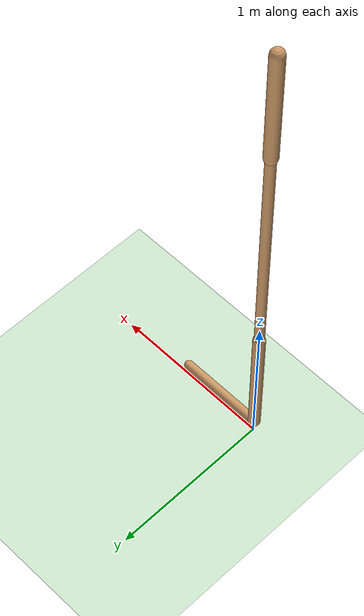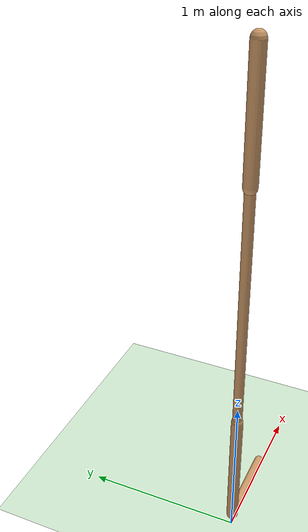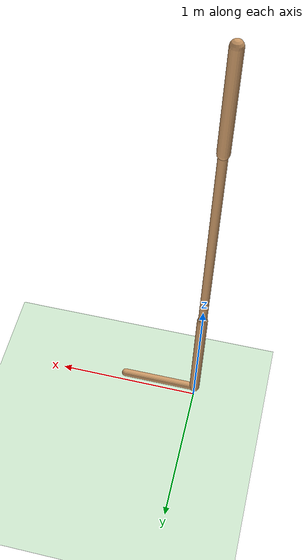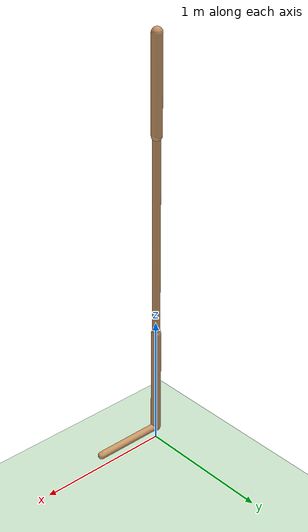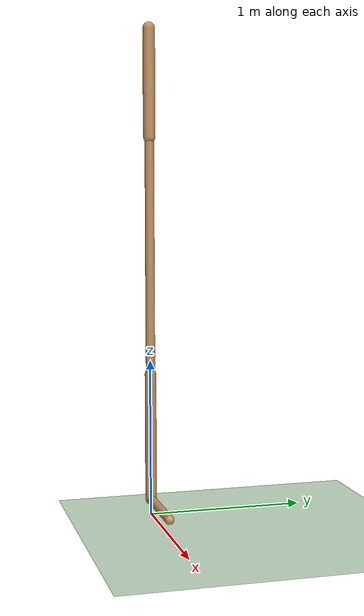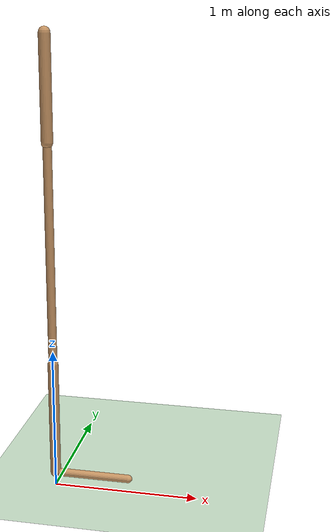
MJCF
<mujoco model="walker2d">
  <compiler angle="degree" inertiafromgeom="true" />
  <default>
    <joint armature="0.01" damping=".1" limited="true" />
    <geom conaffinity="0" condim="3" contype="1" density="1000" friction=".7 .1 .1" rgba="0.8 0.6 .4 1" />
  </default>
  <option integrator="RK4" timestep="0.002" />
  <worldbody>
    <light cutoff="100" diffuse="1 1 1" dir="-0 0 -1.3" directional="true" exponent="1" pos="0 0 1.3" specular=".1 .1 .1" />
    <geom conaffinity="1" condim="3" name="floor" pos="0 0 0" rgba="0.8 0.9 0.8 1" size="40 40 40" type="plane" material="MatPlane" />
    <body name="torso" pos="0 0 2.763030952215195">
      <camera name="track" mode="trackcom" pos="0 -5 -1.25" xyaxes="1 0 0 0 0 1" />
      <joint armature="0" axis="1 0 0" damping="0" limited="false" name="rootx" pos="0 0 -1.25" stiffness="0" type="slide" />
      <joint armature="0" axis="0 0 1" damping="0" limited="false" name="rootz" pos="0 0 -1.25" ref="1.25" stiffness="0" type="slide" />
      <joint armature="0" axis="0 1 0" damping="0" limited="false" name="rooty" pos="0 0 0" stiffness="0" type="hinge" />
      <geom friction="0.9" name="torso_geom" size="0.038610391318798065 0.34070131182670593" type="capsule" />
      <body name="thigh" pos="0 0 -0.34070131182670593">
        <joint axis="0 -1 0" name="thigh_joint" pos="0 0 0" range="-150 0" type="hinge" />
        <site name="torso_thigh_site" pos="0 0 0" size="0.01" type="sphere" rgba="1 0 0 0.5" />
        <geom friction="0.9" pos="0 0 -0.7533007264137268" name="thigh_geom" size="0.029339373111724854 0.7533007264137268" type="capsule" />
        <body name="leg" pos="0 0 -1.9144655466079712">
          <joint axis="0 -1 0" name="leg_joint" pos="0 0 0.4078640937805176" range="-150 0" type="hinge" />
          <site name="thigh_leg_site" pos="0 0 0.25" size="0.01" type="sphere" rgba="1 0 0 0.5" />
          <geom friction="0.9" name="leg_geom" size="0.0362473763525486 0.4078640937805176" type="capsule" />
          <body name="foot" pos="0.5205788612365723 0 -0.5078640937805176">
            <joint axis="0 -1 0" name="foot_joint" pos="-0.5205788612365723 0 0.1" range="-45 45" type="hinge" />
            <site name="leg_foot_site" pos="-0.2 0 0.1" size="0.01" type="sphere" rgba="1 0 0 0.5" />
            <geom friction="0.9" pos="-0.26028943061828613 0 0.1" quat="0.70710678118654757 0 -0.70710678118654746 0" name="foot_geom" size="0.028016943484544754 0.26028943061828613" type="capsule" />
          </body>
        </body>
      </body>

      <body name="thigh_left" pos="0 0 -0.34070131182670593">
        <joint axis="0 -1 0" name="thigh_left_joint" pos="0 0 0" range="-150 0" type="hinge" />
        <site name="torso_thigh_left_site" pos="0 0 0" size="0.01" type="sphere" rgba="1 0 0 0.5" />
        <geom friction="0.9" name="thigh_left_geom" rgba=".7 .3 .6 1" size="0.029339373111724854 0.7533007264137268" pos="0 0 -0.7533007264137268" type="capsule" />
        <body name="leg_left" pos="0 0 -1.9144655466079712">
          <joint axis="0 -1 0" name="leg_left_joint" pos="0 0 0.4078640937805176" range="-150 0" type="hinge" />
          <site name="thigh_leg_left_site" pos="0 0 0.25" size="0.01" type="sphere" rgba="1 0 0 0.5" />
          <geom friction="0.9" name="leg_left_geom" rgba=".7 .3 .6 1" size="0.0362473763525486 0.4078640937805176" type="capsule" />
          <body name="foot_left" pos="0.5205788612365723 0 -0.5078640937805176">
            <joint axis="0 -1 0" name="foot_left_joint" pos="-0.5205788612365723 0 0.1" range="-45 45" type="hinge" />
            <site name="leg_foot_left_site" pos="-0.2 0 0.1" size="0.01" type="sphere" rgba="1 0 0 0.5" />
            <geom friction="1.9" name="foot_left_geom" rgba=".7 .3 .6 1" size="0.028016943484544754 0.26028943061828613" pos="-0.26028943061828613 0 0.1" type="capsule" quat="0.70710678118654757 0 -0.70710678118654746 0" />
          </body>
        </body>
      </body>
    </body>
  </worldbody>
  <actuator>

    <motor ctrllimited="true" ctrlrange="-1.0 1.0" gear="115.27828841350596" joint="thigh_joint" />
    <motor ctrllimited="true" ctrlrange="-1.0 1.0" gear="133.97033297517936" joint="leg_joint" />
    <motor ctrllimited="true" ctrlrange="-1.0 1.0" gear="56.75387780165878" joint="foot_joint" />
    <motor ctrllimited="true" ctrlrange="-1.0 1.0" gear="115.27828841350596" joint="thigh_left_joint" />
    <motor ctrllimited="true" ctrlrange="-1.0 1.0" gear="133.97033297517936" joint="leg_left_joint" />
    <motor ctrllimited="true" ctrlrange="-1.0 1.0" gear="56.75387780165878" joint="foot_left_joint" />

  </actuator>
    <asset>
        <texture type="skybox" builtin="gradient" rgb1=".4 .5 .6" rgb2="0 0 0" width="100" height="100" />
        <texture builtin="flat" height="1278" mark="cross" markrgb="1 1 1" name="texgeom" random="0.01" rgb1="0.8 0.6 0.4" rgb2="0.8 0.6 0.4" type="cube" width="127" />
        <texture builtin="checker" height="100" name="texplane" rgb1="0 0 0" rgb2="0.8 0.8 0.8" type="2d" width="100" />
        <material name="MatPlane" reflectance="0.5" shininess="1" specular="1" texrepeat="60 60" texture="texplane" />
        <material name="geom" texture="texgeom" texuniform="true" />
    </asset>

  <sensor>
    <force site="torso_thigh_site" name="torso_thigh_sensor" />
    <force site="thigh_leg_site" name="thigh_leg_sensor" />
    <force site="leg_foot_site" name="leg_foot_sensor" />
    <force site="torso_thigh_left_site" name="torso_thigh_left_sensor" />
    <force site="thigh_leg_left_site" name="thigh_leg_left_sensor" />
    <force site="leg_foot_left_site" name="leg_foot_left_sensor" />
  </sensor>
</mujoco>
